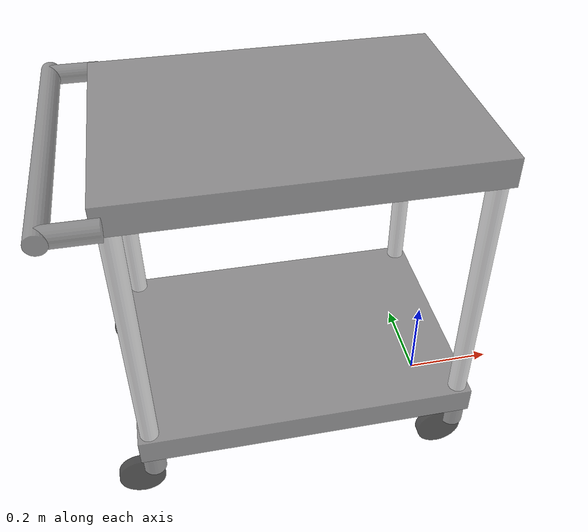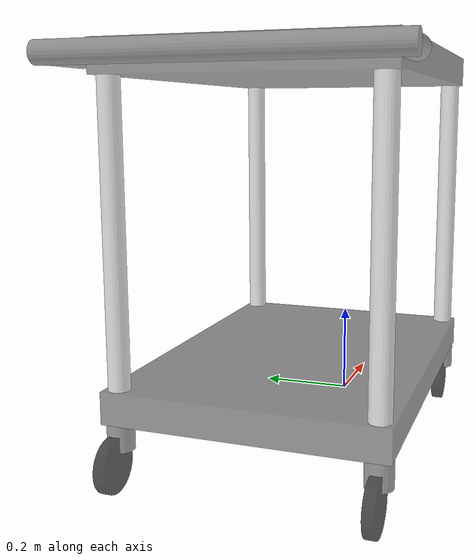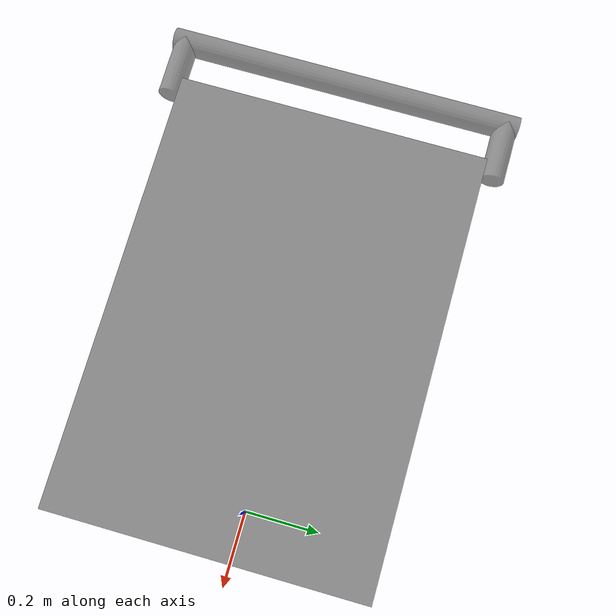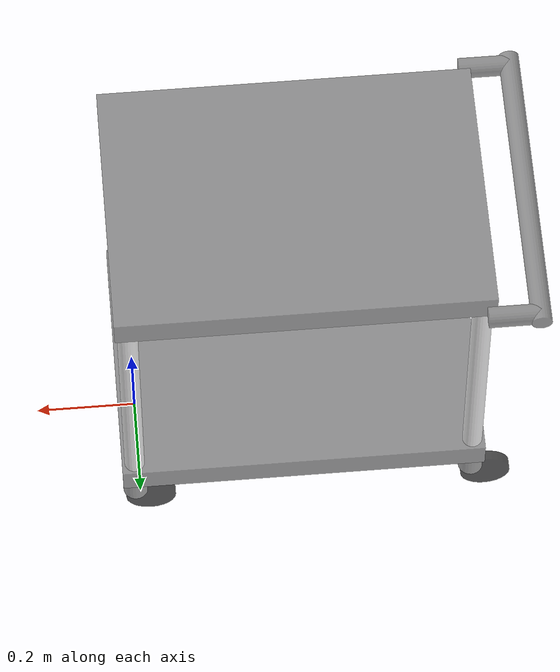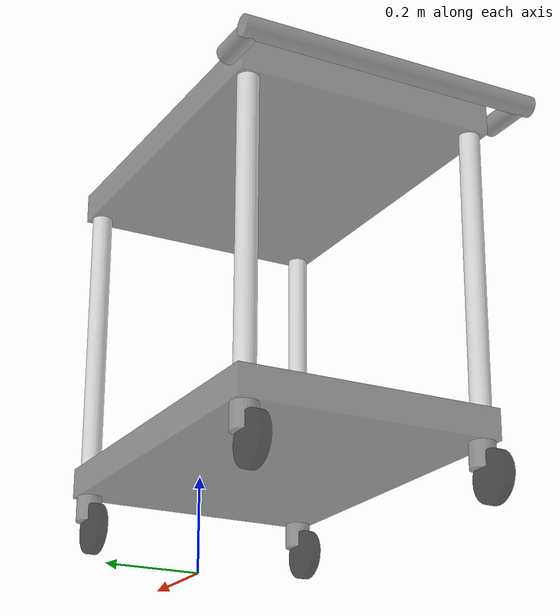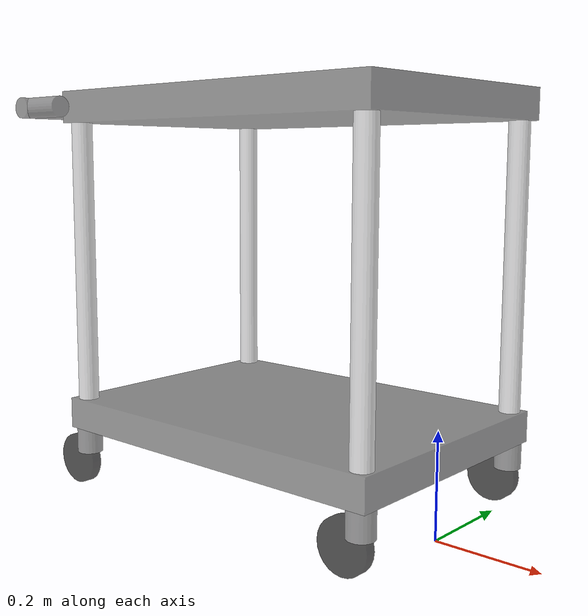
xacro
<?xml version="1.0"?>
<robot name="continuous_pendulum"
       xmlns:xi="http://www.w3.org/2001/XInclude"
       xmlns:gazebo="http://playerstage.sourceforge.net/gazebo/xmlschema/#gz"
       xmlns:model="http://playerstage.sourceforge.net/gazebo/xmlschema/#model"
       xmlns:sensor="http://playerstage.sourceforge.net/gazebo/xmlschema/#sensor"
       xmlns:body="http://playerstage.sourceforge.net/gazebo/xmlschema/#body"
       xmlns:geom="http://playerstage.sourceforge.net/gazebo/xmlschema/#geom"
       xmlns:joint="http://playerstage.sourceforge.net/gazebo/xmlschema/#joint"
       xmlns:interface="http://playerstage.sourceforge.net/gazebo/xmlschema/#interface"
       xmlns:rendering="http://playerstage.sourceforge.net/gazebo/xmlschema/#rendering"
       xmlns:renderable="http://playerstage.sourceforge.net/gazebo/xmlschema/#renderable"
       xmlns:controller="http://playerstage.sourceforge.net/gazebo/xmlschema/#controller"
       xmlns:xacro="http://ros.org/wiki/xacro"
       xmlns:physics="http://playerstage.sourceforge.net/gazebo/xmlschema/#physics">

  <xacro:property name="M_PI" value="3.1415926535897931" />

  <xacro:property name="cart_width" value="0.52" />
  <xacro:property name="cart_length" value="0.73" />

  <xacro:property name="shelf_thickness" value="0.06" />
  <xacro:property name="top_height" value="0.605" />

  <xacro:property name="handle_radius" value="0.02" />
  <xacro:property name="handle_length" value="0.6" />
  <xacro:property name="leg_radius" value="0.02" />

  <xacro:property name="caster_height" value="0.05" />
  <xacro:property name="caster_radius" value="0.025" />

  <xacro:property name="wheel_radius" value="0.05" />
  <xacro:property name="wheel_width" value="0.02" />
  <xacro:property name="wheel_height" value="0.1" />
  <xacro:property name="wheel_offset" value="0.03" />

  <xacro:property name="black" value="0 0 0 0.7" />
  <xacro:property name="silver" value="0.8 0.8 0.8 0.7" />
  <xacro:property name="steel" value="0.4 0.4 0.4 0.7" />
  <xacro:property name="green" value="0 1 0 0.7" />

  <xacro:macro name="cart_caster" params="prefix parent color radius height top_offset type *origin">
    <!--
       prefix = caster name ["front_left"]
       color = an rgba tuple "155 155 155 0.7"
       top_offset = a scalar
       *origin = an origin block containing xyz="" and rpy="" fields
      -->
    <joint name="${prefix}_caster" type="${type}" >
      <xacro:insert_block name="origin" />
      <parent link="${parent}" />
      <child link="${prefix}_caster" />
      <axis xyz="0 0 1" />
    </joint>
    <link name="${prefix}_caster">
      <inertial>
	<mass value="1.0"/>
	<origin xyz="0 0 ${top_offset}" />
	<inertia  ixx="0.1" ixy="0.0"  ixz="0.0"  iyy="0.1"  iyz="0.0"  izz="0.1" />
      </inertial>
      <visual>
	<origin xyz="0 0 ${top_offset}" rpy="0 0 0" />
	<geometry>
          <cylinder radius="${radius}" length="${height}" />
	</geometry>
	<material name="${color}"> <!--Dumb to use for a name, but whatever-->
	  <color rgba="${color}"/>
	</material>
      </visual>
      <collision>
	<origin xyz="0 0 ${top_offset}" rpy="0 0 0" />
	<geometry>
          <cylinder radius="0.025" length="${height}" />
	</geometry>
      </collision>
    </link>
    <gazebo reference="${prefix}_caster">
      <mu1>10</mu1>
      <mu2>10</mu2>
      <material>Gazebo/Red</material>
      <turnGravityOff>false</turnGravityOff>
    </gazebo>
  </xacro:macro>

  <xacro:macro name="cart_wheel" params="prefix color offset height radius width">
    <!--
       prefix = wheel name ["front_left"]
       color = an rgba tuple "155 155 155 0.7"
       offset = a scalar
       radius = a scalar
       width = a scalar
      -->
    <joint name="${prefix}_wheel" type="continuous" >
      <origin xyz="${-offset} 0 ${-height}" rpy="0 0 0"/>
      <parent link="${prefix}_caster" />
      <child link="${prefix}_wheel" />
      <axis xyz="0 1 0" />
    </joint>
    <link name="${prefix}_wheel">
      <inertial>
	<mass value="0.1"/>
	<origin xyz="0 0 0" />
	<inertia  ixx="0.01" ixy="0.0"  ixz="0.0"  iyy="0.01"  iyz="0.0"  izz="0.01" />
      </inertial>
      <visual>
	<origin xyz="0 0 0" rpy="${M_PI/2} 0 0" />
	<geometry>
          <cylinder radius="${radius}" length="${width}" />
	</geometry>
	<material name="${color}"> <!--Dumb to use for a name, but whatever-->
	  <color rgba="${color}"/>
	</material>
      </visual>
      <collision>
	<origin xyz="0 0 0" rpy="${M_PI/2} 0 0" />
	<geometry>
          <cylinder radius="${radius}" length="${width}" />
	</geometry>
      </collision>
    </link>
    <gazebo reference="${prefix}_wheel">
      <dampingFactor>0.01</dampingFactor>
      <mu1>10</mu1>
      <mu2>10</mu2>
      <material>Gazebo/Green</material>
      <turnGravityOff>false</turnGravityOff>
    </gazebo>
  </xacro:macro>

  <xacro:macro name="cart_shelf" params="name parent color length width thickness *origin">
  <joint name="${name}_joint" type="fixed" >
    <xacro:insert_block name="origin" />
    <parent link="${parent}" />
    <child link="${name}" />
  </joint>
    <link name="${name}">
      <inertial>
	<mass value="1.0"/>
	<origin xyz="0 0 0" />
	<inertia  ixx="0.1" ixy="0.0"  ixz="0.0"  iyy="0.1"  iyz="0.0"  izz="0.1" />
      </inertial>
      <visual>
	<origin xyz="0 0 0" rpy="0 0 0" />
	<geometry>
          <box size="${length} ${width} ${thickness}" />
	</geometry>
	<material name="${color}"> <!--Dumb to use for a name, but whatever-->
	  <color rgba="${color}"/>
	</material>
      </visual>
      <collision>
	<origin xyz="0 0 0" rpy="0 0 0" />
	<geometry>
          <box size="${length} ${width} ${thickness}" />
	</geometry>
      </collision>
    </link>
    <gazebo reference="${name}">
      <mu1>10</mu1>
      <mu2>10</mu2>
      <material>Gazebo/Blue</material>
      <turnGravityOff>false</turnGravityOff>
    </gazebo>
  </xacro:macro>

  <xacro:macro name="cart_bar" params="name parent color radius length *origin">
    <joint name="${name}_joint" type="fixed" >
      <xacro:insert_block name="origin" />
      <parent link="${parent}" />
      <child link="${name}" />
    </joint>
    <link name="${name}">
      <inertial>
	<mass value="0.1"/>
	<origin xyz="0 0 0" />
	<inertia  ixx="0.01" ixy="0.0"  ixz="0.0"  iyy="0.01"  iyz="0.0"  izz="0.01" />
      </inertial>
      <visual>
	<origin xyz="0 0 0" rpy="0 0 0"/>
	<geometry>
          <cylinder radius="${radius}" length="${length}" />
	</geometry>
	<material name="${color}">
	  <color rgba="${color}"/>
	</material>
      </visual>
      <collision>
	<origin xyz="0 0 0" rpy="0 0 0"/>
	<geometry>
          <cylinder radius="${radius}" length="${length}" />
	</geometry>
      </collision>
    </link>
    <gazebo reference="${name}">
      <mu1>10</mu1>
      <mu2>10</mu2>
      <material>Gazebo/BumpyMetal</material>
      <turnGravityOff>false</turnGravityOff>
    </gazebo>
  </xacro:macro>

  <!-- Base link of the robot (we attach cart frame to this in tf using fake_cart_joint_state_publisher)-->
  <link name="base" />

  <!-- BOTTOM SHELF - set origin.x to back to push back the cart origin to the middle of the fixed wheels -->
  <xacro:cart_shelf name="bottom" parent="base" color="${steel}" length="${cart_length}" width="${cart_width}" thickness="${shelf_thickness}">
    <origin xyz="-0.33 0 ${2*wheel_radius + shelf_thickness}" rpy="0 0 0" />
  </xacro:cart_shelf>

  <!-- TOP SHELF -->
  <xacro:cart_shelf name="top" parent="bottom" color="${steel}" length="${cart_length}" width="${cart_width}" thickness="${shelf_thickness}" >
    <origin xyz="0 0 ${top_height}" rpy="0 0 0" />
  </xacro:cart_shelf>

  <!-- FRONT-LEFT CASTER -->
  <xacro:cart_caster prefix="front_left" parent="bottom" color="${steel}" top_offset="${-shelf_thickness/2-caster_height/2}" radius="${caster_radius}" height="${caster_height}" type="fixed">
    <origin xyz="${cart_length/2 - caster_radius} ${-cart_width/2 + caster_radius} 0" rpy="0 0 0"/>
  </xacro:cart_caster>
  <xacro:cart_wheel prefix="front_left" color="${black}" offset="${wheel_offset}" height="${wheel_height}" radius="${wheel_radius}" width="${wheel_width}" />

  <!-- FRONT-RIGHT CASTER -->
  <xacro:cart_caster prefix="front_right" parent="bottom" color="${steel}" top_offset="${-shelf_thickness/2-caster_height/2}" radius="${caster_radius}" height="${caster_height}" type="fixed">
    <origin xyz="${cart_length/2 - caster_radius} ${cart_width/2 - caster_radius} 0" rpy="0 0 0"/>
  </xacro:cart_caster>
  <xacro:cart_wheel prefix="front_right" color="${black}" offset="${wheel_offset}" height="${wheel_height}" radius="${wheel_radius}" width="${wheel_width}" />

  <!-- BACK-LEFT CASTER -->
  <xacro:cart_caster prefix="back_left" parent="bottom" color="${steel}" top_offset="${-shelf_thickness/2-caster_height/2}" radius="${caster_radius}" height="${caster_height}" type="continuous">
    <origin xyz="${-cart_length/2 + caster_radius} ${-cart_width/2 + caster_radius} 0" rpy="0 0 0"/>
  </xacro:cart_caster>
  <xacro:cart_wheel prefix="back_left" color="${black}" offset="${wheel_offset}" height="${wheel_height}" radius="${wheel_radius}" width="${wheel_width}" />

  <!-- BACK-RIGHT CASTER -->
  <xacro:cart_caster prefix="back_right" parent="bottom" color="${steel}" top_offset="${-shelf_thickness/2-caster_height/2}" radius="${caster_radius}" height="${caster_height}" type="continuous">
    <origin xyz="${-cart_length/2 + caster_radius} ${cart_width/2 - caster_radius} 0" rpy="0 0 0"/>
  </xacro:cart_caster>
  <xacro:cart_wheel prefix="back_right" color="${black}" offset="${wheel_offset}" height="${wheel_height}" radius="${wheel_radius}" width="${wheel_width}" />

  <!-- LEGS -->
  <xacro:cart_bar name="front_left_leg" parent="front_left_caster" color="${silver}" radius="${leg_radius}" length="${top_height - shelf_thickness}">
    <origin xyz="0 0 ${top_height/2}" rpy="0 0 0"/>
  </xacro:cart_bar>
  <xacro:cart_bar name="front_right_leg" parent="front_right_caster" color="${silver}" radius="${leg_radius}" length="${top_height - shelf_thickness}">
    <origin xyz="0 0 ${top_height/2}" rpy="0 0 0"/>
  </xacro:cart_bar>
  <xacro:cart_bar name="back_left_leg" parent="back_left_caster" color="${silver}" radius="${leg_radius}" length="${top_height}">
    <origin xyz="0 0 ${top_height/2}" rpy="0 0 0"/>
  </xacro:cart_bar>
  <xacro:cart_bar name="back_right_leg" parent="back_right_caster" color="${silver}" radius="${leg_radius}" length="${top_height}">
    <origin xyz="0 0 ${top_height/2}" rpy="0 0 0"/>
  </xacro:cart_bar>

  <!-- HANDLE BAR -->
  <xacro:cart_bar name="handle" parent="top" color="${steel}" radius="${handle_radius}" length="${handle_length}">
    <origin xyz="${-cart_length/2 - 0.08} 0 0" rpy="${M_PI/2} 0 0"/>
  </xacro:cart_bar>
  <xacro:cart_bar name="handle_rmt" parent="handle" color="${steel}" radius="${handle_radius}" length="${0.1}">
    <origin xyz="0.05 0.0 ${handle_length/2 - handle_radius}" rpy="0 ${M_PI/2} 0"/>
  </xacro:cart_bar>
  <xacro:cart_bar name="handle_lmt" parent="handle" color="${steel}" radius="${handle_radius}" length="${0.1}">
    <origin xyz="0.05 0.0 -${handle_length/2 - handle_radius}" rpy="0 ${M_PI/2} 0"/>
  </xacro:cart_bar>

</robot>
